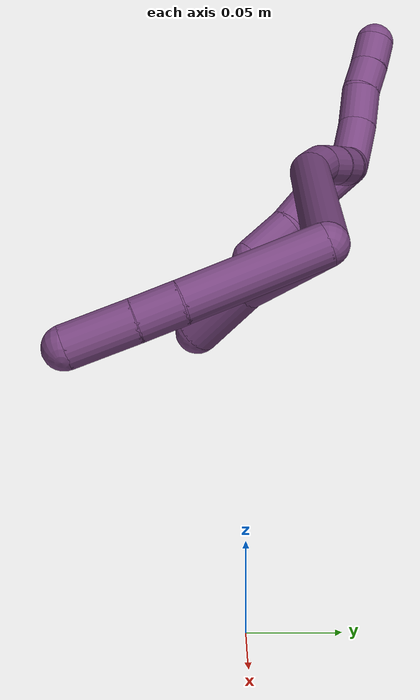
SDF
<sdf version="1.7">
 <world name="default">
  <model name="20">
   <static>0</static>
   <link name="20">
    <collision name="collision-cylinder-e_1_2_8">
     <pose>-0.010814 -0.037058 -0.016349 1.98627 -0.260894 -0.397228</pose>
     <geometry><cylinder><radius>0.0125</radius><length>0.083846</length></cylinder></geometry>
     <surface>
      <friction><ode><mu>1.16</mu><mu2>1.16</mu2><slip1>0</slip1><slip2>0</slip2></ode></friction>
      <contact><ode><kp>1e+06</kp><kd>1</kd><max_vel>0</max_vel><min_depth>0.001</min_depth></ode></contact>
     </surface>
    </collision>
    <visual name="visual-cylinder-e_1_2_8">
     <pose>-0.010814 -0.037058 -0.016349 1.98627 -0.260894 -0.397228</pose>
     <geometry><cylinder><radius>0.0125</radius><length>0.083846</length></cylinder></geometry>
     <material><ambient>0.478431 0.278431 0.509804 1</ambient></material>
    </visual>
    <collision name="collision-cylinder-e_2_8_9">
     <pose>-0.025633 -0.085727 -0.036943 1.92143 -0.313338 -0.444479</pose>
     <geometry><cylinder><radius>0.0125</radius><length>0.02599</length></cylinder></geometry>
     <surface>
      <friction><ode><mu>1.16</mu><mu2>1.16</mu2><slip1>0</slip1><slip2>0</slip2></ode></friction>
      <contact><ode><kp>1e+06</kp><kd>1</kd><max_vel>0</max_vel><min_depth>0.001</min_depth></ode></contact>
     </surface>
    </collision>
    <visual name="visual-cylinder-e_2_8_9">
     <pose>-0.025633 -0.085727 -0.036943 1.92143 -0.313338 -0.444479</pose>
     <geometry><cylinder><radius>0.0125</radius><length>0.02599</length></cylinder></geometry>
     <material><ambient>0.478431 0.278431 0.509804 1</ambient></material>
    </visual>
    <collision name="collision-cylinder-e_3_9_6">
     <pose>-0.036307 -0.115423 -0.046823 1.87273 -0.33846 -0.456268</pose>
     <geometry><cylinder><radius>0.0125</radius><length>0.040164</length></cylinder></geometry>
     <surface>
      <friction><ode><mu>1.16</mu><mu2>1.16</mu2><slip1>0</slip1><slip2>0</slip2></ode></friction>
      <contact><ode><kp>1e+06</kp><kd>1</kd><max_vel>0</max_vel><min_depth>0.001</min_depth></ode></contact>
     </surface>
    </collision>
    <visual name="visual-cylinder-e_3_9_6">
     <pose>-0.036307 -0.115423 -0.046823 1.87273 -0.33846 -0.456268</pose>
     <geometry><cylinder><radius>0.0125</radius><length>0.040164</length></cylinder></geometry>
     <material><ambient>0.478431 0.278431 0.509804 1</ambient></material>
    </visual>
    <collision name="collision-cylinder-e_1_2_10">
     <pose>-0.01945 -0.020524 0.002904 1.43022 -0.753591 -0.662013</pose>
     <geometry><cylinder><radius>0.0125</radius><length>0.056849</length></cylinder></geometry>
     <surface>
      <friction><ode><mu>1.16</mu><mu2>1.16</mu2><slip1>0</slip1><slip2>0</slip2></ode></friction>
      <contact><ode><kp>1e+06</kp><kd>1</kd><max_vel>0</max_vel><min_depth>0.001</min_depth></ode></contact>
     </surface>
    </collision>
    <visual name="visual-cylinder-e_1_2_10">
     <pose>-0.01945 -0.020524 0.002904 1.43022 -0.753591 -0.662013</pose>
     <geometry><cylinder><radius>0.0125</radius><length>0.056849</length></cylinder></geometry>
     <material><ambient>0.478431 0.278431 0.509804 1</ambient></material>
    </visual>
    <collision name="collision-cylinder-e_2_10_5">
     <pose>-0.056809 -0.053037 0.006816 1.48693 -0.97921 -0.911172</pose>
     <geometry><cylinder><radius>0.0125</radius><length>0.043151</length></cylinder></geometry>
     <surface>
      <friction><ode><mu>1.16</mu><mu2>1.16</mu2><slip1>0</slip1><slip2>0</slip2></ode></friction>
      <contact><ode><kp>1e+06</kp><kd>1</kd><max_vel>0</max_vel><min_depth>0.001</min_depth></ode></contact>
     </surface>
    </collision>
    <visual name="visual-cylinder-e_2_10_5">
     <pose>-0.056809 -0.053037 0.006816 1.48693 -0.97921 -0.911172</pose>
     <geometry><cylinder><radius>0.0125</radius><length>0.043151</length></cylinder></geometry>
     <material><ambient>0.478431 0.278431 0.509804 1</ambient></material>
    </visual>
    <collision name="collision-cylinder-e_1_2_11">
     <pose>-0.047792 -0.002854 0.097099 0.029383 -0.457216 -0.006837</pose>
     <geometry><cylinder><radius>0.0125</radius><length>0.216522</length></cylinder></geometry>
     <surface>
      <friction><ode><mu>1.16</mu><mu2>1.16</mu2><slip1>0</slip1><slip2>0</slip2></ode></friction>
      <contact><ode><kp>1e+06</kp><kd>1</kd><max_vel>0</max_vel><min_depth>0.001</min_depth></ode></contact>
     </surface>
    </collision>
    <visual name="visual-cylinder-e_1_2_11">
     <pose>-0.047792 -0.002854 0.097099 0.029383 -0.457216 -0.006837</pose>
     <geometry><cylinder><radius>0.0125</radius><length>0.216522</length></cylinder></geometry>
     <material><ambient>0.478431 0.278431 0.509804 1</ambient></material>
    </visual>
    <collision name="collision-cylinder-e_2_11_12">
     <pose>-0.099691 -0.002266 0.204131 -0.333597 -0.372448 0.06342</pose>
     <geometry><cylinder><radius>0.0125</radius><length>0.022572</length></cylinder></geometry>
     <surface>
      <friction><ode><mu>1.16</mu><mu2>1.16</mu2><slip1>0</slip1><slip2>0</slip2></ode></friction>
      <contact><ode><kp>1e+06</kp><kd>1</kd><max_vel>0</max_vel><min_depth>0.001</min_depth></ode></contact>
     </surface>
    </collision>
    <visual name="visual-cylinder-e_2_11_12">
     <pose>-0.099691 -0.002266 0.204131 -0.333597 -0.372448 0.06342</pose>
     <geometry><cylinder><radius>0.0125</radius><length>0.022572</length></cylinder></geometry>
     <material><ambient>0.478431 0.278431 0.509804 1</ambient></material>
    </visual>
    <collision name="collision-cylinder-e_3_12_13">
     <pose>-0.108777 0.006155 0.221404 -0.595898 -0.511517 0.160255</pose>
     <geometry><cylinder><radius>0.0125</radius><length>0.020343</length></cylinder></geometry>
     <surface>
      <friction><ode><mu>1.16</mu><mu2>1.16</mu2><slip1>0</slip1><slip2>0</slip2></ode></friction>
      <contact><ode><kp>1e+06</kp><kd>1</kd><max_vel>0</max_vel><min_depth>0.001</min_depth></ode></contact>
     </surface>
    </collision>
    <visual name="visual-cylinder-e_3_12_13">
     <pose>-0.108777 0.006155 0.221404 -0.595898 -0.511517 0.160255</pose>
     <geometry><cylinder><radius>0.0125</radius><length>0.020343</length></cylinder></geometry>
     <material><ambient>0.478431 0.278431 0.509804 1</ambient></material>
    </visual>
    <collision name="collision-cylinder-e_4_13_14">
     <pose>-0.119299 0.014972 0.236337 -0.468216 -0.577465 0.141437</pose>
     <geometry><cylinder><radius>0.0125</radius><length>0.020306</length></cylinder></geometry>
     <surface>
      <friction><ode><mu>1.16</mu><mu2>1.16</mu2><slip1>0</slip1><slip2>0</slip2></ode></friction>
      <contact><ode><kp>1e+06</kp><kd>1</kd><max_vel>0</max_vel><min_depth>0.001</min_depth></ode></contact>
     </surface>
    </collision>
    <visual name="visual-cylinder-e_4_13_14">
     <pose>-0.119299 0.014972 0.236337 -0.468216 -0.577465 0.141437</pose>
     <geometry><cylinder><radius>0.0125</radius><length>0.020306</length></cylinder></geometry>
     <material><ambient>0.478431 0.278431 0.509804 1</ambient></material>
    </visual>
    <collision name="collision-cylinder-e_5_14_1">
     <pose>-0.130553 0.020269 0.252164 -0.175136 -0.599136 0.054218</pose>
     <geometry><cylinder><radius>0.0125</radius><length>0.020256</length></cylinder></geometry>
     <surface>
      <friction><ode><mu>1.16</mu><mu2>1.16</mu2><slip1>0</slip1><slip2>0</slip2></ode></friction>
      <contact><ode><kp>1e+06</kp><kd>1</kd><max_vel>0</max_vel><min_depth>0.001</min_depth></ode></contact>
     </surface>
    </collision>
    <visual name="visual-cylinder-e_5_14_1">
     <pose>-0.130553 0.020269 0.252164 -0.175136 -0.599136 0.054218</pose>
     <geometry><cylinder><radius>0.0125</radius><length>0.020256</length></cylinder></geometry>
     <material><ambient>0.478431 0.278431 0.509804 1</ambient></material>
    </visual>
    <collision name="collision-cylinder-e_1_1_15">
     <pose>-0.131464 0.023726 0.276079 -0.126909 0.29484 -0.01887</pose>
     <geometry><cylinder><radius>0.0125</radius><length>0.033038</length></cylinder></geometry>
     <surface>
      <friction><ode><mu>1.16</mu><mu2>1.16</mu2><slip1>0</slip1><slip2>0</slip2></ode></friction>
      <contact><ode><kp>1e+06</kp><kd>1</kd><max_vel>0</max_vel><min_depth>0.001</min_depth></ode></contact>
     </surface>
    </collision>
    <visual name="visual-cylinder-e_1_1_15">
     <pose>-0.131464 0.023726 0.276079 -0.126909 0.29484 -0.01887</pose>
     <geometry><cylinder><radius>0.0125</radius><length>0.033038</length></cylinder></geometry>
     <material><ambient>0.478431 0.278431 0.509804 1</ambient></material>
    </visual>
    <collision name="collision-cylinder-e_2_15_16">
     <pose>-0.120218 0.026238 0.303229 -0.044534 0.511521 -0.011647</pose>
     <geometry><cylinder><radius>0.0125</radius><length>0.026336</length></cylinder></geometry>
     <surface>
      <friction><ode><mu>1.16</mu><mu2>1.16</mu2><slip1>0</slip1><slip2>0</slip2></ode></friction>
      <contact><ode><kp>1e+06</kp><kd>1</kd><max_vel>0</max_vel><min_depth>0.001</min_depth></ode></contact>
     </surface>
    </collision>
    <visual name="visual-cylinder-e_2_15_16">
     <pose>-0.120218 0.026238 0.303229 -0.044534 0.511521 -0.011647</pose>
     <geometry><cylinder><radius>0.0125</radius><length>0.026336</length></cylinder></geometry>
     <material><ambient>0.478431 0.278431 0.509804 1</ambient></material>
    </visual>
    <collision name="collision-cylinder-e_3_16_17">
     <pose>-0.110003 0.028834 0.32382 -0.224715 0.382996 -0.043744</pose>
     <geometry><cylinder><radius>0.0125</radius><length>0.020171</length></cylinder></geometry>
     <surface>
      <friction><ode><mu>1.16</mu><mu2>1.16</mu2><slip1>0</slip1><slip2>0</slip2></ode></friction>
      <contact><ode><kp>1e+06</kp><kd>1</kd><max_vel>0</max_vel><min_depth>0.001</min_depth></ode></contact>
     </surface>
    </collision>
    <visual name="visual-cylinder-e_3_16_17">
     <pose>-0.110003 0.028834 0.32382 -0.224715 0.382996 -0.043744</pose>
     <geometry><cylinder><radius>0.0125</radius><length>0.020171</length></cylinder></geometry>
     <material><ambient>0.478431 0.278431 0.509804 1</ambient></material>
    </visual>
    <collision name="collision-cylinder-e_4_17_4">
     <pose>-0.102273 0.032462 0.342242 -0.164475 0.397706 -0.033216</pose>
     <geometry><cylinder><radius>0.0125</radius><length>0.020455</length></cylinder></geometry>
     <surface>
      <friction><ode><mu>1.16</mu><mu2>1.16</mu2><slip1>0</slip1><slip2>0</slip2></ode></friction>
      <contact><ode><kp>1e+06</kp><kd>1</kd><max_vel>0</max_vel><min_depth>0.001</min_depth></ode></contact>
     </surface>
    </collision>
    <visual name="visual-cylinder-e_4_17_4">
     <pose>-0.102273 0.032462 0.342242 -0.164475 0.397706 -0.033216</pose>
     <geometry><cylinder><radius>0.0125</radius><length>0.020455</length></cylinder></geometry>
     <material><ambient>0.478431 0.278431 0.509804 1</ambient></material>
    </visual>
    <collision name="collision-cylinder-e_1_1_18">
     <pose>-0.138136 0.01075 0.244636 2.53339 -0.097153 -0.307365</pose>
     <geometry><cylinder><radius>0.0125</radius><length>0.0386</length></cylinder></geometry>
     <surface>
      <friction><ode><mu>1.16</mu><mu2>1.16</mu2><slip1>0</slip1><slip2>0</slip2></ode></friction>
      <contact><ode><kp>1e+06</kp><kd>1</kd><max_vel>0</max_vel><min_depth>0.001</min_depth></ode></contact>
     </surface>
    </collision>
    <visual name="visual-cylinder-e_1_1_18">
     <pose>-0.138136 0.01075 0.244636 2.53339 -0.097153 -0.307365</pose>
     <geometry><cylinder><radius>0.0125</radius><length>0.0386</length></cylinder></geometry>
     <material><ambient>0.478431 0.278431 0.509804 1</ambient></material>
    </visual>
    <collision name="collision-cylinder-e_2_18_19">
     <pose>-0.143869 -0.007837 0.216889 2.57571 -0.265513 -0.861144</pose>
     <geometry><cylinder><radius>0.0125</radius><length>0.029422</length></cylinder></geometry>
     <surface>
      <friction><ode><mu>1.16</mu><mu2>1.16</mu2><slip1>0</slip1><slip2>0</slip2></ode></friction>
      <contact><ode><kp>1e+06</kp><kd>1</kd><max_vel>0</max_vel><min_depth>0.001</min_depth></ode></contact>
     </surface>
    </collision>
    <visual name="visual-cylinder-e_2_18_19">
     <pose>-0.143869 -0.007837 0.216889 2.57571 -0.265513 -0.861144</pose>
     <geometry><cylinder><radius>0.0125</radius><length>0.029422</length></cylinder></geometry>
     <material><ambient>0.478431 0.278431 0.509804 1</ambient></material>
    </visual>
    <collision name="collision-cylinder-e_3_19_3">
     <pose>-0.153565 -0.026089 0.194497 2.34521 -0.373651 -0.844646</pose>
     <geometry><cylinder><radius>0.0125</radius><length>0.031978</length></cylinder></geometry>
     <surface>
      <friction><ode><mu>1.16</mu><mu2>1.16</mu2><slip1>0</slip1><slip2>0</slip2></ode></friction>
      <contact><ode><kp>1e+06</kp><kd>1</kd><max_vel>0</max_vel><min_depth>0.001</min_depth></ode></contact>
     </surface>
    </collision>
    <visual name="visual-cylinder-e_3_19_3">
     <pose>-0.153565 -0.026089 0.194497 2.34521 -0.373651 -0.844646</pose>
     <geometry><cylinder><radius>0.0125</radius><length>0.031978</length></cylinder></geometry>
     <material><ambient>0.478431 0.278431 0.509804 1</ambient></material>
    </visual>
    <collision name="collision-sphere-3">
     <pose>-0.159401 -0.03673 0.184087 0 -0 0</pose>
     <geometry><sphere><radius>0.0125</radius></sphere></geometry>
     <surface>
      <friction><ode><mu>1.16</mu><mu2>1.16</mu2><slip1>0</slip1><slip2>0</slip2></ode></friction>
      <contact><ode><kp>1e+06</kp><kd>1</kd><max_vel>0</max_vel><min_depth>0.001</min_depth></ode></contact>
     </surface>
    </collision>
    <visual name="visual-sphere-3">
     <pose>-0.159401 -0.03673 0.184087 0 -0 0</pose>
     <geometry><sphere><radius>0.0125</radius></sphere></geometry>
     <material><ambient>0.478431 0.278431 0.509804 1</ambient></material>
    </visual>
    <collision name="collision-sphere-19">
     <pose>-0.147729 -0.015448 0.204906 0 -0 0</pose>
     <geometry><sphere><radius>0.0125</radius></sphere></geometry>
     <surface>
      <friction><ode><mu>1.16</mu><mu2>1.16</mu2><slip1>0</slip1><slip2>0</slip2></ode></friction>
      <contact><ode><kp>1e+06</kp><kd>1</kd><max_vel>0</max_vel><min_depth>0.001</min_depth></ode></contact>
     </surface>
    </collision>
    <visual name="visual-sphere-19">
     <pose>-0.147729 -0.015448 0.204906 0 -0 0</pose>
     <geometry><sphere><radius>0.0125</radius></sphere></geometry>
     <material><ambient>0.478431 0.278431 0.509804 1</ambient></material>
    </visual>
    <collision name="collision-sphere-5">
     <pose>-0.074717 -0.065027 0.007824 0 -0 0</pose>
     <geometry><sphere><radius>0.0125</radius></sphere></geometry>
     <surface>
      <friction><ode><mu>1.16</mu><mu2>1.16</mu2><slip1>0</slip1><slip2>0</slip2></ode></friction>
      <contact><ode><kp>1e+06</kp><kd>1</kd><max_vel>0</max_vel><min_depth>0.001</min_depth></ode></contact>
     </surface>
    </collision>
    <visual name="visual-sphere-5">
     <pose>-0.074717 -0.065027 0.007824 0 -0 0</pose>
     <geometry><sphere><radius>0.0125</radius></sphere></geometry>
     <material><ambient>0.478431 0.278431 0.509804 1</ambient></material>
    </visual>
    <collision name="collision-sphere-10">
     <pose>-0.0389 -0.041048 0.005808 0 -0 0</pose>
     <geometry><sphere><radius>0.0125</radius></sphere></geometry>
     <surface>
      <friction><ode><mu>1.16</mu><mu2>1.16</mu2><slip1>0</slip1><slip2>0</slip2></ode></friction>
      <contact><ode><kp>1e+06</kp><kd>1</kd><max_vel>0</max_vel><min_depth>0.001</min_depth></ode></contact>
     </surface>
    </collision>
    <visual name="visual-sphere-10">
     <pose>-0.0389 -0.041048 0.005808 0 -0 0</pose>
     <geometry><sphere><radius>0.0125</radius></sphere></geometry>
     <material><ambient>0.478431 0.278431 0.509804 1</ambient></material>
    </visual>
    <collision name="collision-sphere-6">
     <pose>-0.042975 -0.133509 -0.052456 0 -0 0</pose>
     <geometry><sphere><radius>0.0125</radius></sphere></geometry>
     <surface>
      <friction><ode><mu>1.16</mu><mu2>1.16</mu2><slip1>0</slip1><slip2>0</slip2></ode></friction>
      <contact><ode><kp>1e+06</kp><kd>1</kd><max_vel>0</max_vel><min_depth>0.001</min_depth></ode></contact>
     </surface>
    </collision>
    <visual name="visual-sphere-6">
     <pose>-0.042975 -0.133509 -0.052456 0 -0 0</pose>
     <geometry><sphere><radius>0.0125</radius></sphere></geometry>
     <material><ambient>0.478431 0.278431 0.509804 1</ambient></material>
    </visual>
    <collision name="collision-sphere-9">
     <pose>-0.029639 -0.097337 -0.04119 0 -0 0</pose>
     <geometry><sphere><radius>0.0125</radius></sphere></geometry>
     <surface>
      <friction><ode><mu>1.16</mu><mu2>1.16</mu2><slip1>0</slip1><slip2>0</slip2></ode></friction>
      <contact><ode><kp>1e+06</kp><kd>1</kd><max_vel>0</max_vel><min_depth>0.001</min_depth></ode></contact>
     </surface>
    </collision>
    <visual name="visual-sphere-9">
     <pose>-0.029639 -0.097337 -0.04119 0 -0 0</pose>
     <geometry><sphere><radius>0.0125</radius></sphere></geometry>
     <material><ambient>0.478431 0.278431 0.509804 1</ambient></material>
    </visual>
    <collision name="collision-sphere-2">
     <geometry><sphere><radius>0.0125</radius></sphere></geometry>
     <surface>
      <friction><ode><mu>1.16</mu><mu2>1.16</mu2><slip1>0</slip1><slip2>0</slip2></ode></friction>
      <contact><ode><kp>1e+06</kp><kd>1</kd><max_vel>0</max_vel><min_depth>0.001</min_depth></ode></contact>
     </surface>
    </collision>
    <visual name="visual-sphere-2">
     <geometry><sphere><radius>0.0125</radius></sphere></geometry>
     <material><ambient>0.478431 0.278431 0.509804 1</ambient></material>
    </visual>
    <collision name="collision-sphere-8">
     <pose>-0.021628 -0.074117 -0.032697 0 -0 0</pose>
     <geometry><sphere><radius>0.0125</radius></sphere></geometry>
     <surface>
      <friction><ode><mu>1.16</mu><mu2>1.16</mu2><slip1>0</slip1><slip2>0</slip2></ode></friction>
      <contact><ode><kp>1e+06</kp><kd>1</kd><max_vel>0</max_vel><min_depth>0.001</min_depth></ode></contact>
     </surface>
    </collision>
    <visual name="visual-sphere-8">
     <pose>-0.021628 -0.074117 -0.032697 0 -0 0</pose>
     <geometry><sphere><radius>0.0125</radius></sphere></geometry>
     <material><ambient>0.478431 0.278431 0.509804 1</ambient></material>
    </visual>
    <collision name="collision-sphere-11">
     <pose>-0.095584 -0.005708 0.194198 0 -0 0</pose>
     <geometry><sphere><radius>0.0125</radius></sphere></geometry>
     <surface>
      <friction><ode><mu>1.16</mu><mu2>1.16</mu2><slip1>0</slip1><slip2>0</slip2></ode></friction>
      <contact><ode><kp>1e+06</kp><kd>1</kd><max_vel>0</max_vel><min_depth>0.001</min_depth></ode></contact>
     </surface>
    </collision>
    <visual name="visual-sphere-11">
     <pose>-0.095584 -0.005708 0.194198 0 -0 0</pose>
     <geometry><sphere><radius>0.0125</radius></sphere></geometry>
     <material><ambient>0.478431 0.278431 0.509804 1</ambient></material>
    </visual>
    <collision name="collision-sphere-12">
     <pose>-0.103798 0.001177 0.214063 0 -0 0</pose>
     <geometry><sphere><radius>0.0125</radius></sphere></geometry>
     <surface>
      <friction><ode><mu>1.16</mu><mu2>1.16</mu2><slip1>0</slip1><slip2>0</slip2></ode></friction>
      <contact><ode><kp>1e+06</kp><kd>1</kd><max_vel>0</max_vel><min_depth>0.001</min_depth></ode></contact>
     </surface>
    </collision>
    <visual name="visual-sphere-12">
     <pose>-0.103798 0.001177 0.214063 0 -0 0</pose>
     <geometry><sphere><radius>0.0125</radius></sphere></geometry>
     <material><ambient>0.478431 0.278431 0.509804 1</ambient></material>
    </visual>
    <collision name="collision-sphere-13">
     <pose>-0.113756 0.011133 0.228745 0 -0 0</pose>
     <geometry><sphere><radius>0.0125</radius></sphere></geometry>
     <surface>
      <friction><ode><mu>1.16</mu><mu2>1.16</mu2><slip1>0</slip1><slip2>0</slip2></ode></friction>
      <contact><ode><kp>1e+06</kp><kd>1</kd><max_vel>0</max_vel><min_depth>0.001</min_depth></ode></contact>
     </surface>
    </collision>
    <visual name="visual-sphere-13">
     <pose>-0.113756 0.011133 0.228745 0 -0 0</pose>
     <geometry><sphere><radius>0.0125</radius></sphere></geometry>
     <material><ambient>0.478431 0.278431 0.509804 1</ambient></material>
    </visual>
    <collision name="collision-sphere-14">
     <pose>-0.124841 0.018811 0.243928 0 -0 0</pose>
     <geometry><sphere><radius>0.0125</radius></sphere></geometry>
     <surface>
      <friction><ode><mu>1.16</mu><mu2>1.16</mu2><slip1>0</slip1><slip2>0</slip2></ode></friction>
      <contact><ode><kp>1e+06</kp><kd>1</kd><max_vel>0</max_vel><min_depth>0.001</min_depth></ode></contact>
     </surface>
    </collision>
    <visual name="visual-sphere-14">
     <pose>-0.124841 0.018811 0.243928 0 -0 0</pose>
     <geometry><sphere><radius>0.0125</radius></sphere></geometry>
     <material><ambient>0.478431 0.278431 0.509804 1</ambient></material>
    </visual>
    <collision name="collision-sphere-1">
     <pose>-0.136264 0.021726 0.2604 0 -0 0</pose>
     <geometry><sphere><radius>0.0125</radius></sphere></geometry>
     <surface>
      <friction><ode><mu>1.16</mu><mu2>1.16</mu2><slip1>0</slip1><slip2>0</slip2></ode></friction>
      <contact><ode><kp>1e+06</kp><kd>1</kd><max_vel>0</max_vel><min_depth>0.001</min_depth></ode></contact>
     </surface>
    </collision>
    <visual name="visual-sphere-1">
     <pose>-0.136264 0.021726 0.2604 0 -0 0</pose>
     <geometry><sphere><radius>0.0125</radius></sphere></geometry>
     <material><ambient>0.478431 0.278431 0.509804 1</ambient></material>
    </visual>
    <collision name="collision-sphere-18">
     <pose>-0.140009 -0.000226 0.228871 0 -0 0</pose>
     <geometry><sphere><radius>0.0125</radius></sphere></geometry>
     <surface>
      <friction><ode><mu>1.16</mu><mu2>1.16</mu2><slip1>0</slip1><slip2>0</slip2></ode></friction>
      <contact><ode><kp>1e+06</kp><kd>1</kd><max_vel>0</max_vel><min_depth>0.001</min_depth></ode></contact>
     </surface>
    </collision>
    <visual name="visual-sphere-18">
     <pose>-0.140009 -0.000226 0.228871 0 -0 0</pose>
     <geometry><sphere><radius>0.0125</radius></sphere></geometry>
     <material><ambient>0.478431 0.278431 0.509804 1</ambient></material>
    </visual>
    <collision name="collision-sphere-15">
     <pose>-0.126664 0.025727 0.291758 0 -0 0</pose>
     <geometry><sphere><radius>0.0125</radius></sphere></geometry>
     <surface>
      <friction><ode><mu>1.16</mu><mu2>1.16</mu2><slip1>0</slip1><slip2>0</slip2></ode></friction>
      <contact><ode><kp>1e+06</kp><kd>1</kd><max_vel>0</max_vel><min_depth>0.001</min_depth></ode></contact>
     </surface>
    </collision>
    <visual name="visual-sphere-15">
     <pose>-0.126664 0.025727 0.291758 0 -0 0</pose>
     <geometry><sphere><radius>0.0125</radius></sphere></geometry>
     <material><ambient>0.478431 0.278431 0.509804 1</ambient></material>
    </visual>
    <collision name="collision-sphere-16">
     <pose>-0.113772 0.026749 0.314701 0 -0 0</pose>
     <geometry><sphere><radius>0.0125</radius></sphere></geometry>
     <surface>
      <friction><ode><mu>1.16</mu><mu2>1.16</mu2><slip1>0</slip1><slip2>0</slip2></ode></friction>
      <contact><ode><kp>1e+06</kp><kd>1</kd><max_vel>0</max_vel><min_depth>0.001</min_depth></ode></contact>
     </surface>
    </collision>
    <visual name="visual-sphere-16">
     <pose>-0.113772 0.026749 0.314701 0 -0 0</pose>
     <geometry><sphere><radius>0.0125</radius></sphere></geometry>
     <material><ambient>0.478431 0.278431 0.509804 1</ambient></material>
    </visual>
    <collision name="collision-sphere-17">
     <pose>-0.106234 0.030918 0.33294 0 -0 0</pose>
     <geometry><sphere><radius>0.0125</radius></sphere></geometry>
     <surface>
      <friction><ode><mu>1.16</mu><mu2>1.16</mu2><slip1>0</slip1><slip2>0</slip2></ode></friction>
      <contact><ode><kp>1e+06</kp><kd>1</kd><max_vel>0</max_vel><min_depth>0.001</min_depth></ode></contact>
     </surface>
    </collision>
    <visual name="visual-sphere-17">
     <pose>-0.106234 0.030918 0.33294 0 -0 0</pose>
     <geometry><sphere><radius>0.0125</radius></sphere></geometry>
     <material><ambient>0.478431 0.278431 0.509804 1</ambient></material>
    </visual>
    <collision name="collision-sphere-4">
     <pose>-0.098312 0.034006 0.351544 0 -0 0</pose>
     <geometry><sphere><radius>0.0125</radius></sphere></geometry>
     <surface>
      <friction><ode><mu>1.16</mu><mu2>1.16</mu2><slip1>0</slip1><slip2>0</slip2></ode></friction>
      <contact><ode><kp>1e+06</kp><kd>1</kd><max_vel>0</max_vel><min_depth>0.001</min_depth></ode></contact>
     </surface>
    </collision>
    <visual name="visual-sphere-4">
     <pose>-0.098312 0.034006 0.351544 0 -0 0</pose>
     <geometry><sphere><radius>0.0125</radius></sphere></geometry>
     <material><ambient>0.478431 0.278431 0.509804 1</ambient></material>
    </visual>
    <inertial>
     <pose>-0.07035 -0.014913 0.118632 0 -0 0</pose>
     <mass>0.75</mass>
     <inertia>
      <ixx>0.000794</ixx>
      <ixy>0</ixy>
      <ixz>0</ixz>
      <iyy>0.000797</iyy>
      <iyz>0</iyz>
      <izz>0.000532</izz>
     </inertia>
    </inertial>
   </link>
   <pose>-0.07346 0.04532 0.1907 -0.189333 -1.09618 0.129729</pose>
  </model>
 </world>
</sdf>
